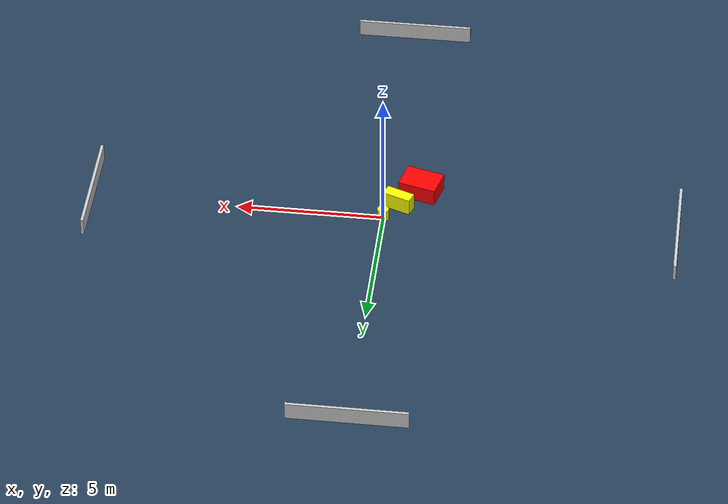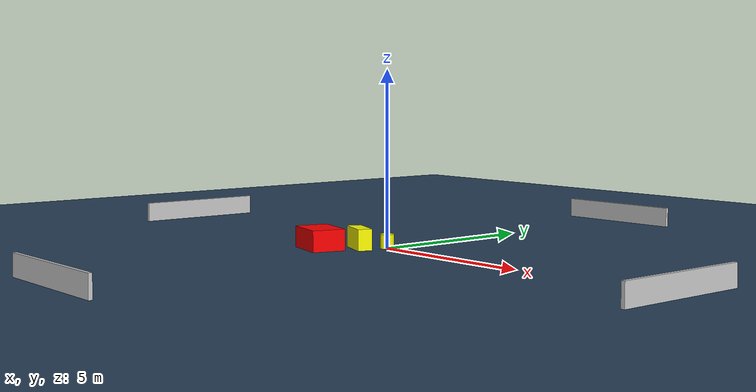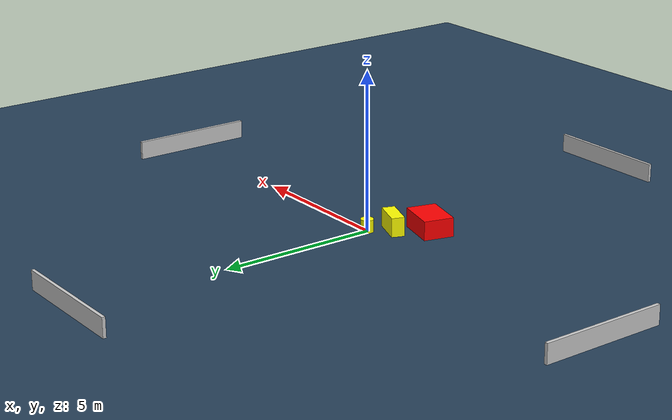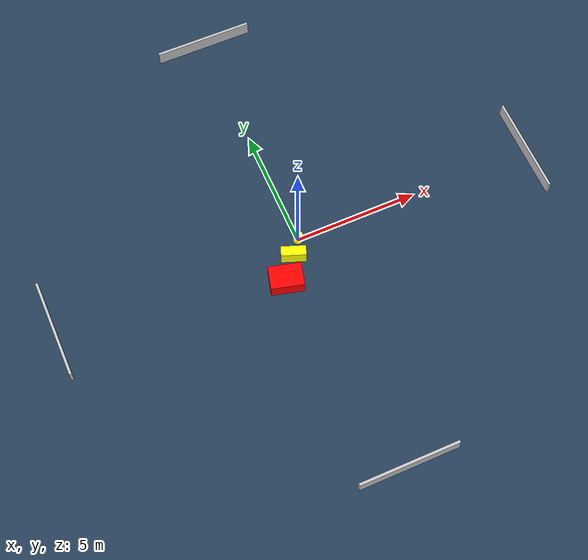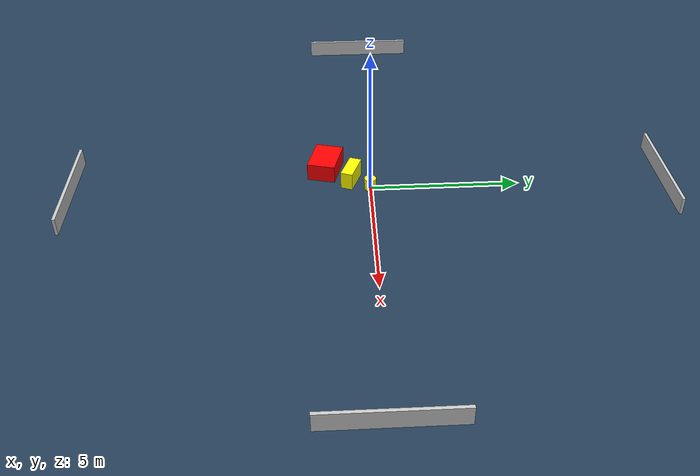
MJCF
<?xml version="1.0" ?>
<mujoco model="generated_environment">
  <option timestep="0.01" integrator="RK4" cone="elliptic"/>
  <default>
    <geom density="1"/>
  </default>
  <asset>
    <texture builtin="gradient" height="3072" name="skybox" rgb1="0.3 0.5 0.7" rgb2="0 0 0" type="skybox" width="512"/>
    <texture builtin="checker" height="300" name="groundplane" rgb1="0.2 0.3 0.4" rgb2="0.1 0.2 0.3" type="2d" width="300"/>
    <material name="groundplane" reflectance="0.2" texrepeat="5 5" texture="groundplane"/>
  </asset>
  <worldbody>
    <light dir="0 0 -1" directional="true" pos="0 0 1.5"/>
    <geom condim="3" friction="0.5 0.005 0.001" material="groundplane" name="floor" pos="0 0 0" size="0 0 0.05" type="plane"/>
    <body name="walls">
      <geom name="wall_1" condim="4" pos="-10.0 0.0 0.3" rgba="0.800000011920929 0.800000011920929 0.800000011920929 1.0" size="0.05 2.0 0.3" type="box"/>
      <geom name="wall_2" condim="4" pos="10.0 0.0 0.3" rgba="0.800000011920929 0.800000011920929 0.800000011920929 1.0" size="0.05 2.0 0.3" type="box"/>
      <geom name="wall_3" condim="4" pos="0.0 -10.0 0.3" rgba="0.800000011920929 0.800000011920929 0.800000011920929 1.0" size="2.0 0.05 0.3" type="box"/>
      <geom name="wall_4" condim="4" pos="0.0 10.0 0.3" rgba="0.800000011920929 0.800000011920929 0.800000011920929 1.0" size="2.0 0.05 0.3" type="box"/>
    </body>
    <body name="robot">
      <joint name="joint_x" type="slide" pos="0 0 0" axis="1 0 0"/>
      <joint name="joint_y" type="slide" pos="0 0 0" axis="0 1 0"/>
      <geom name="robot" type="cylinder" pos="0.0 0.0 0.2" size="0.2 0.2 0.0" mass="5.0" friction="1.0 0.005 0.0001" condim="4" rgba="1.0 1.0 0.0 1.0"/>
    </body>
    <body name="obstacle_1_movable">
      <geom name="obstacle_1_movable" condim="4" pos="-0.4609283211664312 -0.6282003879472726 0.3" euler="0 0 69.54389828219003" friction="0.0 0.005 0.001" rgba="1.0 1.0 0.0 1.0" size="0.20451989287447647 0.4953007644405458 0.3" type="box" mass="0.1"/>
      <joint type="free"/>
    </body>
    <body name="obstacle_2_static">
      <geom name="obstacle_2_static" condim="4" pos="-1.143196476958059 -1.4928660497125334 0.3" euler="0 0 165.29836242239335" friction="0.0 0.005 0.001" rgba="1.0 0.0 0.0 1.0" size="0.6588327714575538 0.475910971380306 0.3" type="box"/>
    </body>
  </worldbody>
  <actuator>
    <motor name="actuator_x" joint="joint_x" gear="1" ctrlrange="-1 1"/>
    <motor name="actuator_y" joint="joint_y" gear="1" ctrlrange="-1 1"/>
  </actuator>
</mujoco>
